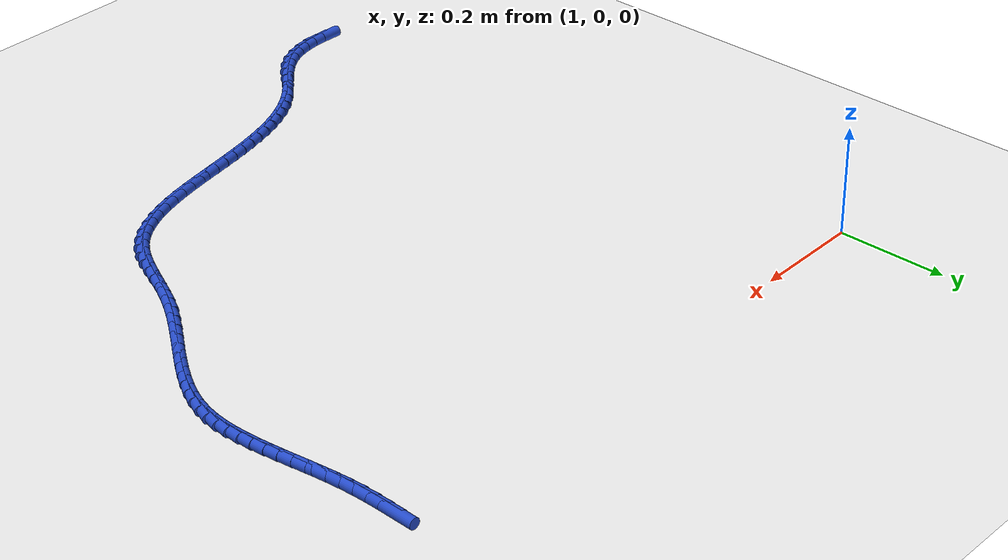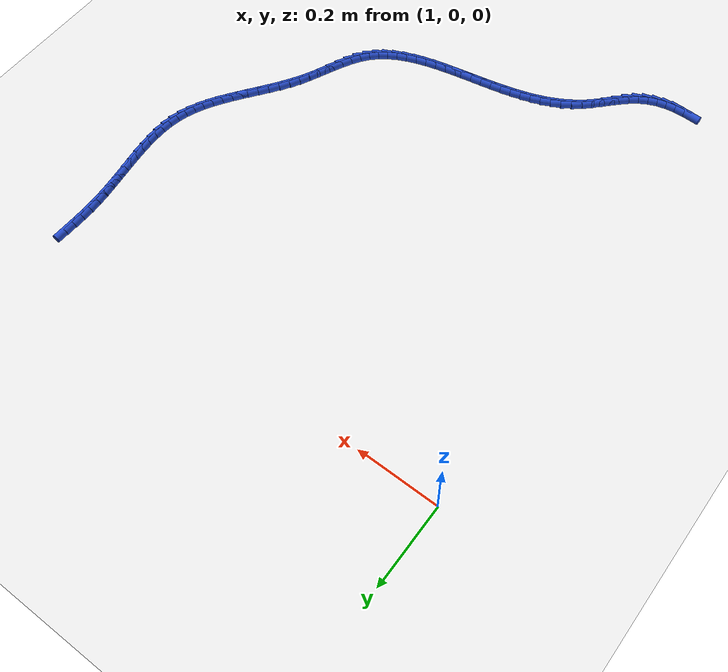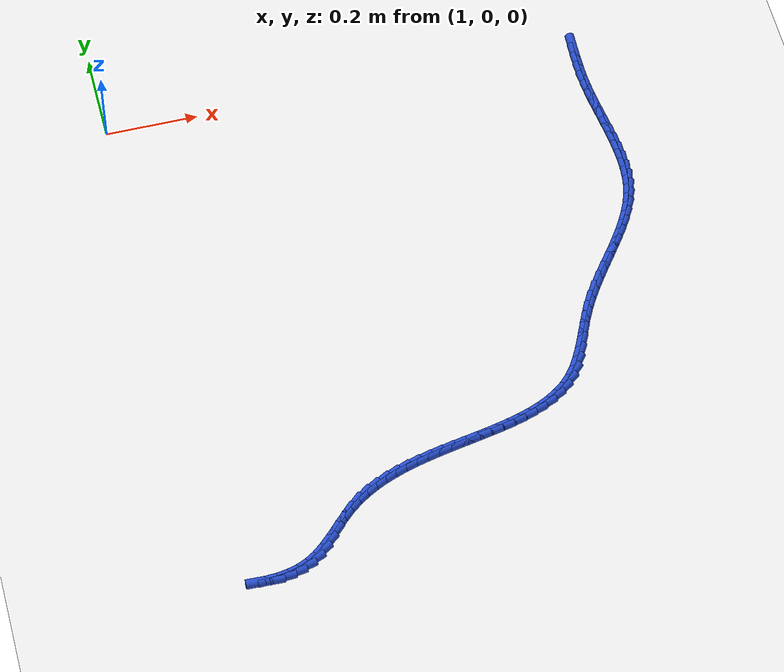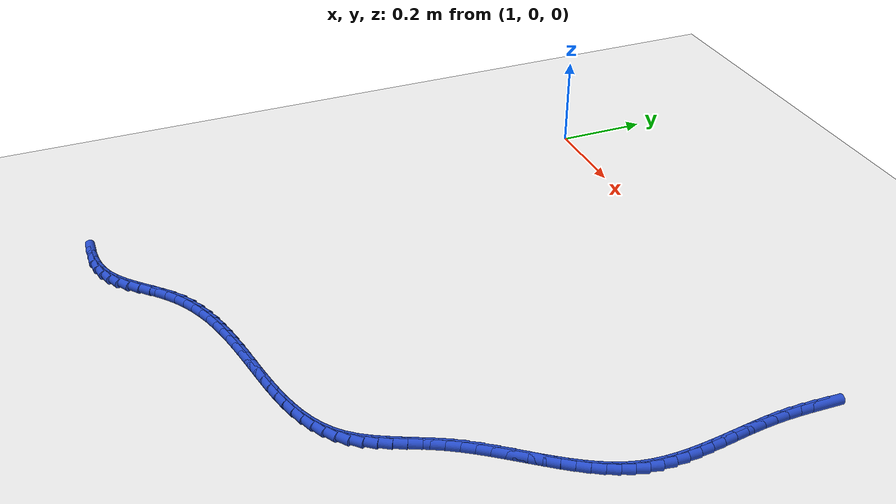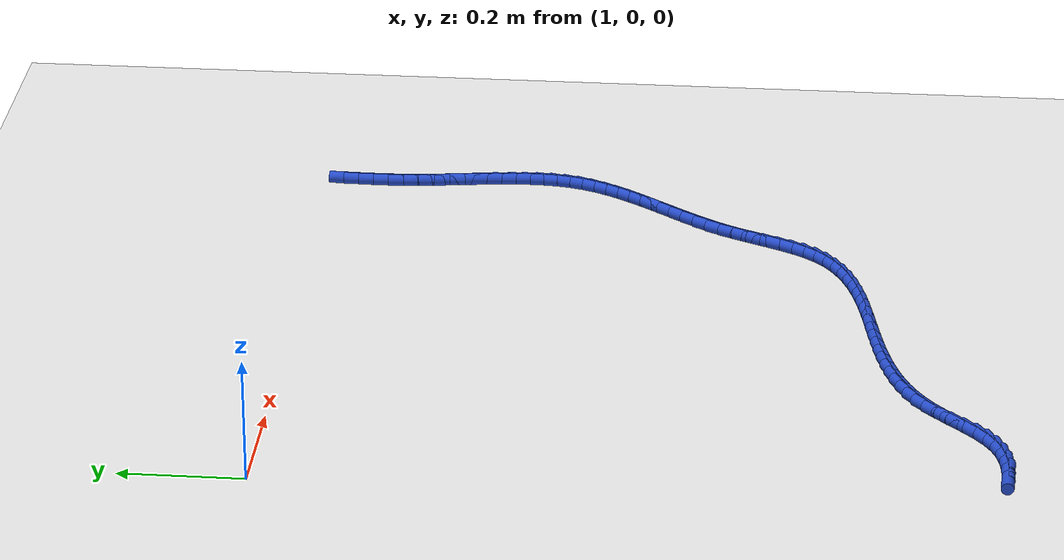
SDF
<sdf version="1.6">
 <world name="default">
  <model name="ground_plane">
   <static>1</static>
   <link name="link">
    <collision name="collision">
     <geometry><plane><normal>0 0 1</normal><size>100 100</size></plane></geometry>
     <surface><friction><ode><mu>100</mu><mu2>50</mu2></ode></friction></surface>
    </collision>
    <visual name="visual">
     <cast_shadows>0</cast_shadows>
     <geometry><plane><normal>0 0 1</normal><size>100 100</size></plane></geometry>
     <material>
      <script><uri>file://media/materials/scripts/gazebo.material</uri><name>Gazebo/WhiteGlow</name></script>
     </material>
    </visual>
   </link>
  </model>
  <model name="line">
   <link name="link_134">
    <pose>2.0437239159734637 -0.029253644134321584 0.01 0 1.57 1.5387486247233988</pose>
    <collision name="collision">
     <geometry><cylinder><radius>0.01</radius><length>0.08</length></cylinder></geometry>
    </collision>
    <visual name="visual">
     <material>
      <script><name>Gazebo/Blue</name><uri>file://media/materials/scripts/gazebo.material</uri></script>
     </material>
     <geometry><cylinder><radius>0.01</radius><length>0.08</length></cylinder></geometry>
    </visual>
   </link>
   <link name="link_135">
    <pose>2.0429131219679495 -0.05454458099971622 0.01 0 1.57 1.5609436208194378</pose>
    <collision name="collision">
     <geometry><cylinder><radius>0.01</radius><length>0.08</length></cylinder></geometry>
    </collision>
    <visual name="visual">
     <material>
      <script><name>Gazebo/Blue</name><uri>file://media/materials/scripts/gazebo.material</uri></script>
     </material>
     <geometry><cylinder><radius>0.01</radius><length>0.08</length></cylinder></geometry>
    </visual>
   </link>
   <link name="link_136">
    <pose>2.0426626185187637 -0.07996859586579133 0.01 0 1.57 -1.5517502731560657</pose>
    <collision name="collision">
     <geometry><cylinder><radius>0.01</radius><length>0.08</length></cylinder></geometry>
    </collision>
    <visual name="visual">
     <material>
      <script><name>Gazebo/Blue</name><uri>file://media/materials/scripts/gazebo.material</uri></script>
     </material>
     <geometry><cylinder><radius>0.01</radius><length>0.08</length></cylinder></geometry>
    </visual>
   </link>
   <link name="link_137">
    <pose>2.0431495154571997 -0.10552969487027573 0.01 0 1.57 -1.516379673448183</pose>
    <collision name="collision">
     <geometry><cylinder><radius>0.01</radius><length>0.08</length></cylinder></geometry>
    </collision>
    <visual name="visual">
     <material>
      <script><name>Gazebo/Blue</name><uri>file://media/materials/scripts/gazebo.material</uri></script>
     </material>
     <geometry><cylinder><radius>0.01</radius><length>0.08</length></cylinder></geometry>
    </visual>
   </link>
   <link name="link_138">
    <pose>2.0445495125193203 -0.13123165972452294 0.01 0 1.57 -1.480540140591088</pose>
    <collision name="collision">
     <geometry><cylinder><radius>0.01</radius><length>0.08</length></cylinder></geometry>
    </collision>
    <visual name="visual">
     <material>
      <script><name>Gazebo/Blue</name><uri>file://media/materials/scripts/gazebo.material</uri></script>
     </material>
     <geometry><cylinder><radius>0.01</radius><length>0.08</length></cylinder></geometry>
    </visual>
   </link>
   <link name="link_139">
    <pose>2.0468864977049606 -0.1570541102553452 0.01 0 1.57 -1.4548975716802495</pose>
    <collision name="collision">
     <geometry><cylinder><radius>0.01</radius><length>0.08</length></cylinder></geometry>
    </collision>
    <visual name="visual">
     <material>
      <script><name>Gazebo/Blue</name><uri>file://media/materials/scripts/gazebo.material</uri></script>
     </material>
     <geometry><cylinder><radius>0.01</radius><length>0.08</length></cylinder></geometry>
    </visual>
   </link>
   <link name="link_140">
    <pose>2.0498991294856013 -0.18293127004350787 0.01 0 1.57 -1.4402466322310568</pose>
    <collision name="collision">
     <geometry><cylinder><radius>0.01</radius><length>0.08</length></cylinder></geometry>
    </collision>
    <visual name="visual">
     <material>
      <script><name>Gazebo/Blue</name><uri>file://media/materials/scripts/gazebo.material</uri></script>
     </material>
     <geometry><cylinder><radius>0.01</radius><length>0.08</length></cylinder></geometry>
    </visual>
   </link>
   <link name="link_141">
    <pose>2.0532945979938524 -0.20879235426667545 0.01 0 1.57 -1.436379928662767</pose>
    <collision name="collision">
     <geometry><cylinder><radius>0.01</radius><length>0.08</length></cylinder></geometry>
    </collision>
    <visual name="visual">
     <material>
      <script><name>Gazebo/Blue</name><uri>file://media/materials/scripts/gazebo.material</uri></script>
     </material>
     <geometry><cylinder><radius>0.01</radius><length>0.08</length></cylinder></geometry>
    </visual>
   </link>
   <link name="link_142">
    <pose>2.056780093362319 -0.23456657810251 0.01 0 1.57 -1.443343010118701</pose>
    <collision name="collision">
     <geometry><cylinder><radius>0.01</radius><length>0.08</length></cylinder></geometry>
    </collision>
    <visual name="visual">
     <material>
      <script><name>Gazebo/Blue</name><uri>file://media/materials/scripts/gazebo.material</uri></script>
     </material>
     <geometry><cylinder><radius>0.01</radius><length>0.08</length></cylinder></geometry>
    </visual>
   </link>
   <link name="link_143">
    <pose>2.0600628057236094 -0.2601831567286768 0.01 0 1.57 -1.461453842899808</pose>
    <collision name="collision">
     <geometry><cylinder><radius>0.01</radius><length>0.08</length></cylinder></geometry>
    </collision>
    <visual name="visual">
     <material>
      <script><name>Gazebo/Blue</name><uri>file://media/materials/scripts/gazebo.material</uri></script>
     </material>
     <geometry><cylinder><radius>0.01</radius><length>0.08</length></cylinder></geometry>
    </visual>
   </link>
   <link name="link_144">
    <pose>2.062849925210332 -0.2855713053228381 0.01 0 1.57 -1.4912989487225434</pose>
    <collision name="collision">
     <geometry><cylinder><radius>0.01</radius><length>0.08</length></cylinder></geometry>
    </collision>
    <visual name="visual">
     <material>
      <script><name>Gazebo/Blue</name><uri>file://media/materials/scripts/gazebo.material</uri></script>
     </material>
     <geometry><cylinder><radius>0.01</radius><length>0.08</length></cylinder></geometry>
    </visual>
   </link>
   <link name="link_145">
    <pose>2.0648486419550927 -0.31066023906265877 0.01 0 1.57 -1.5336958947669288</pose>
    <collision name="collision">
     <geometry><cylinder><radius>0.01</radius><length>0.08</length></cylinder></geometry>
    </collision>
    <visual name="visual">
     <material>
      <script><name>Gazebo/Blue</name><uri>file://media/materials/scripts/gazebo.material</uri></script>
     </material>
     <geometry><cylinder><radius>0.01</radius><length>0.08</length></cylinder></geometry>
    </visual>
   </link>
   <link name="link_146">
    <pose>2.0657661460904997 -0.3353791731258014 0.01 0 1.57 1.5519948713301632</pose>
    <collision name="collision">
     <geometry><cylinder><radius>0.01</radius><length>0.08</length></cylinder></geometry>
    </collision>
    <visual name="visual">
     <material>
      <script><name>Gazebo/Blue</name><uri>file://media/materials/scripts/gazebo.material</uri></script>
     </material>
     <geometry><cylinder><radius>0.01</radius><length>0.08</length></cylinder></geometry>
    </visual>
   </link>
   <link name="link_147">
    <pose>2.0653096277491603 -0.3596573226899309 0.01 0 1.57 1.4816910343936818</pose>
    <collision name="collision">
     <geometry><cylinder><radius>0.01</radius><length>0.08</length></cylinder></geometry>
    </collision>
    <visual name="visual">
     <material>
      <script><name>Gazebo/Blue</name><uri>file://media/materials/scripts/gazebo.material</uri></script>
     </material>
     <geometry><cylinder><radius>0.01</radius><length>0.08</length></cylinder></geometry>
    </visual>
   </link>
   <link name="link_148">
    <pose>2.063186277063683 -0.38342390293270967 0.01 0 1.57 1.396473059218879</pose>
    <collision name="collision">
     <geometry><cylinder><radius>0.01</radius><length>0.08</length></cylinder></geometry>
    </collision>
    <visual name="visual">
     <material>
      <script><name>Gazebo/Blue</name><uri>file://media/materials/scripts/gazebo.material</uri></script>
     </material>
     <geometry><cylinder><radius>0.01</radius><length>0.08</length></cylinder></geometry>
    </visual>
   </link>
   <link name="link_149">
    <pose>2.0591032841666745 -0.40660812903180266 0.01 0 1.57 1.2980463820832298</pose>
    <collision name="collision">
     <geometry><cylinder><radius>0.01</radius><length>0.08</length></cylinder></geometry>
    </collision>
    <visual name="visual">
     <material>
      <script><name>Gazebo/Blue</name><uri>file://media/materials/scripts/gazebo.material</uri></script>
     </material>
     <geometry><cylinder><radius>0.01</radius><length>0.08</length></cylinder></geometry>
    </visual>
   </link>
   <link name="link_150">
    <pose>2.0527982177593525 -0.4291486853962547 0.01 0 1.57 1.203066451865588</pose>
    <collision name="collision">
     <geometry><cylinder><radius>0.01</radius><length>0.08</length></cylinder></geometry>
    </collision>
    <visual name="visual">
     <material>
      <script><name>Gazebo/Blue</name><uri>file://media/materials/scripts/gazebo.material</uri></script>
     </material>
     <geometry><cylinder><radius>0.01</radius><length>0.08</length></cylinder></geometry>
    </visual>
   </link>
   <link name="link_151">
    <pose>2.044345525981798 -0.45108926432391455 0.01 0 1.57 1.122513037046759</pose>
    <collision name="collision">
     <geometry><cylinder><radius>0.01</radius><length>0.08</length></cylinder></geometry>
    </collision>
    <visual name="visual">
     <material>
      <script><name>Gazebo/Blue</name><uri>file://media/materials/scripts/gazebo.material</uri></script>
     </material>
     <geometry><cylinder><radius>0.01</radius><length>0.08</length></cylinder></geometry>
    </visual>
   </link>
   <link name="link_152">
    <pose>2.03402951369882 -0.47253897205326506 0.01 0 1.57 1.056945059654597</pose>
    <collision name="collision">
     <geometry><cylinder><radius>0.01</radius><length>0.08</length></cylinder></geometry>
    </collision>
    <visual name="visual">
     <material>
      <script><name>Gazebo/Blue</name><uri>file://media/materials/scripts/gazebo.material</uri></script>
     </material>
     <geometry><cylinder><radius>0.01</radius><length>0.08</length></cylinder></geometry>
    </visual>
   </link>
   <link name="link_153">
    <pose>2.0221376619810205 -0.493607904870342 0.01 0 1.57 1.0059530532068335</pose>
    <collision name="collision">
     <geometry><cylinder><radius>0.01</radius><length>0.08</length></cylinder></geometry>
    </collision>
    <visual name="visual">
     <material>
      <script><name>Gazebo/Blue</name><uri>file://media/materials/scripts/gazebo.material</uri></script>
     </material>
     <geometry><cylinder><radius>0.01</radius><length>0.08</length></cylinder></geometry>
    </visual>
   </link>
   <link name="link_154">
    <pose>2.0089574518990023 -0.514406159061184 0.01 0 1.57 0.9687496092436748</pose>
    <collision name="collision">
     <geometry><cylinder><radius>0.01</radius><length>0.08</length></cylinder></geometry>
    </collision>
    <visual name="visual">
     <material>
      <script><name>Gazebo/Blue</name><uri>file://media/materials/scripts/gazebo.material</uri></script>
     </material>
     <geometry><cylinder><radius>0.01</radius><length>0.08</length></cylinder></geometry>
    </visual>
   </link>
   <link name="link_155">
    <pose>1.9947763645233685 -0.5350438309118266 0.01 0 1.57 0.9444830496245344</pose>
    <collision name="collision">
     <geometry><cylinder><radius>0.01</radius><length>0.08</length></cylinder></geometry>
    </collision>
    <visual name="visual">
     <material>
      <script><name>Gazebo/Blue</name><uri>file://media/materials/scripts/gazebo.material</uri></script>
     </material>
     <geometry><cylinder><radius>0.01</radius><length>0.08</length></cylinder></geometry>
    </visual>
   </link>
   <link name="link_156">
    <pose>1.9798818809247205 -0.5556310167083084 0.01 0 1.57 0.9324200380225193</pose>
    <collision name="collision">
     <geometry><cylinder><radius>0.01</radius><length>0.08</length></cylinder></geometry>
    </collision>
    <visual name="visual">
     <material>
      <script><name>Gazebo/Blue</name><uri>file://media/materials/scripts/gazebo.material</uri></script>
     </material>
     <geometry><cylinder><radius>0.01</radius><length>0.08</length></cylinder></geometry>
    </visual>
   </link>
   <link name="link_157">
    <pose>1.9645614821736614 -0.576277812736665 0.01 0 1.57 0.9320326433944948</pose>
    <collision name="collision">
     <geometry><cylinder><radius>0.01</radius><length>0.08</length></cylinder></geometry>
    </collision>
    <visual name="visual">
     <material>
      <script><name>Gazebo/Blue</name><uri>file://media/materials/scripts/gazebo.material</uri></script>
     </material>
     <geometry><cylinder><radius>0.01</radius><length>0.08</length></cylinder></geometry>
    </visual>
   </link>
   <link name="link_158">
    <pose>1.9491026493407928 -0.5970943152829351 0.01 0 1.57 0.9430233404289562</pose>
    <collision name="collision">
     <geometry><cylinder><radius>0.01</radius><length>0.08</length></cylinder></geometry>
    </collision>
    <visual name="visual">
     <material>
      <script><name>Gazebo/Blue</name><uri>file://media/materials/scripts/gazebo.material</uri></script>
     </material>
     <geometry><cylinder><radius>0.01</radius><length>0.08</length></cylinder></geometry>
    </visual>
   </link>
   <link name="link_159">
    <pose>1.9337928634967179 -0.6181906206331542 0.01 0 1.57 0.9653085119295896</pose>
    <collision name="collision">
     <geometry><cylinder><radius>0.01</radius><length>0.08</length></cylinder></geometry>
    </collision>
    <visual name="visual">
     <material>
      <script><name>Gazebo/Blue</name><uri>file://media/materials/scripts/gazebo.material</uri></script>
     </material>
     <geometry><cylinder><radius>0.01</radius><length>0.08</length></cylinder></geometry>
    </visual>
   </link>
   <link name="link_160">
    <pose>1.9189196057120381 -0.6396768250733601 0.01 0 1.57 0.9989677914977563</pose>
    <collision name="collision">
     <geometry><cylinder><radius>0.01</radius><length>0.08</length></cylinder></geometry>
    </collision>
    <visual name="visual">
     <material>
      <script><name>Gazebo/Blue</name><uri>file://media/materials/scripts/gazebo.material</uri></script>
     </material>
     <geometry><cylinder><radius>0.01</radius><length>0.08</length></cylinder></geometry>
    </visual>
   </link>
   <link name="link_161">
    <pose>1.9047703570573564 -0.6616630248895908 0.01 0 1.57 1.0441564972787405</pose>
    <collision name="collision">
     <geometry><cylinder><radius>0.01</radius><length>0.08</length></cylinder></geometry>
    </collision>
    <visual name="visual">
     <material>
      <script><name>Gazebo/Blue</name><uri>file://media/materials/scripts/gazebo.material</uri></script>
     </material>
     <geometry><cylinder><radius>0.01</radius><length>0.08</length></cylinder></geometry>
    </visual>
   </link>
   <link name="link_162">
    <pose>1.8916325986032752 -0.6842593163678817 0.01 0 1.57 1.0959298777971835</pose>
    <collision name="collision">
     <geometry><cylinder><radius>0.01</radius><length>0.08</length></cylinder></geometry>
    </collision>
    <visual name="visual">
     <material>
      <script><name>Gazebo/Blue</name><uri>file://media/materials/scripts/gazebo.material</uri></script>
     </material>
     <geometry><cylinder><radius>0.01</radius><length>0.08</length></cylinder></geometry>
    </visual>
   </link>
   <link name="link_163">
    <pose>1.879684255958843 -0.7075004504792011 0.01 0 1.57 1.1299395711670956</pose>
    <collision name="collision">
     <geometry><cylinder><radius>0.01</radius><length>0.08</length></cylinder></geometry>
    </collision>
    <visual name="visual">
     <material>
      <script><name>Gazebo/Blue</name><uri>file://media/materials/scripts/gazebo.material</uri></script>
     </material>
     <geometry><cylinder><radius>0.01</radius><length>0.08</length></cylinder></geometry>
    </visual>
   </link>
   <link name="link_164">
    <pose>1.8685706297657454 -0.7310548724402285 0.01 0 1.57 1.1389622435709437</pose>
    <collision name="collision">
     <geometry><cylinder><radius>0.01</radius><length>0.08</length></cylinder></geometry>
    </collision>
    <visual name="visual">
     <material>
      <script><name>Gazebo/Blue</name><uri>file://media/materials/scripts/gazebo.material</uri></script>
     </material>
     <geometry><cylinder><radius>0.01</radius><length>0.08</length></cylinder></geometry>
    </visual>
   </link>
   <link name="link_165">
    <pose>1.8577753903151097 -0.7544798683386076 0.01 0 1.57 1.1224281262461495</pose>
    <collision name="collision">
     <geometry><cylinder><radius>0.01</radius><length>0.08</length></cylinder></geometry>
    </collision>
    <visual name="visual">
     <material>
      <script><name>Gazebo/Blue</name><uri>file://media/materials/scripts/gazebo.material</uri></script>
     </material>
     <geometry><cylinder><radius>0.01</radius><length>0.08</length></cylinder></geometry>
    </visual>
   </link>
   <link name="link_166">
    <pose>1.8467821713204258 -0.7773326991061943 0.01 0 1.57 1.0786785189212944</pose>
    <collision name="collision">
     <geometry><cylinder><radius>0.01</radius><length>0.08</length></cylinder></geometry>
    </collision>
    <visual name="visual">
     <material>
      <script><name>Gazebo/Blue</name><uri>file://media/materials/scripts/gazebo.material</uri></script>
     </material>
     <geometry><cylinder><radius>0.01</radius><length>0.08</length></cylinder></geometry>
    </visual>
   </link>
   <link name="link_167">
    <pose>1.835074606495183 -0.7991706256748469 0.01 0 1.57 1.005150303773638</pose>
    <collision name="collision">
     <geometry><cylinder><radius>0.01</radius><length>0.08</length></cylinder></geometry>
    </collision>
    <visual name="visual">
     <material>
      <script><name>Gazebo/Blue</name><uri>file://media/materials/scripts/gazebo.material</uri></script>
     </material>
     <geometry><cylinder><radius>0.01</radius><length>0.08</length></cylinder></geometry>
    </visual>
   </link>
   <link name="link_168">
    <pose>1.8221363295528719 -0.8195509089764217 0.01 0 1.57 0.8993160857044395</pose>
    <collision name="collision">
     <geometry><cylinder><radius>0.01</radius><length>0.08</length></cylinder></geometry>
    </collision>
    <visual name="visual">
     <material>
      <script><name>Gazebo/Blue</name><uri>file://media/materials/scripts/gazebo.material</uri></script>
     </material>
     <geometry><cylinder><radius>0.01</radius><length>0.08</length></cylinder></geometry>
    </visual>
   </link>
   <link name="link_169">
    <pose>1.8074509742069824 -0.8380308099427776 0.01 0 1.57 0.7668327677381886</pose>
    <collision name="collision">
     <geometry><cylinder><radius>0.01</radius><length>0.08</length></cylinder></geometry>
    </collision>
    <visual name="visual">
     <material>
      <script><name>Gazebo/Blue</name><uri>file://media/materials/scripts/gazebo.material</uri></script>
     </material>
     <geometry><cylinder><radius>0.01</radius><length>0.08</length></cylinder></geometry>
    </visual>
   </link>
   <link name="link_170">
    <pose>1.7906076328627598 -0.8542600747152802 0.01 0 1.57 0.639861048322176</pose>
    <collision name="collision">
     <geometry><cylinder><radius>0.01</radius><length>0.08</length></cylinder></geometry>
    </collision>
    <visual name="visual">
     <material>
      <script><name>Gazebo/Blue</name><uri>file://media/materials/scripts/gazebo.material</uri></script>
     </material>
     <geometry><cylinder><radius>0.01</radius><length>0.08</length></cylinder></geometry>
    </visual>
   </link>
   <link name="link_171">
    <pose>1.7717015895469264 -0.8683323695843636 0.01 0 1.57 0.5300281745696098</pose>
    <collision name="collision">
     <geometry><cylinder><radius>0.01</radius><length>0.08</length></cylinder></geometry>
    </collision>
    <visual name="visual">
     <material>
      <script><name>Gazebo/Blue</name><uri>file://media/materials/scripts/gazebo.material</uri></script>
     </material>
     <geometry><cylinder><radius>0.01</radius><length>0.08</length></cylinder></geometry>
    </visual>
   </link>
   <link name="link_172">
    <pose>1.7509798197636126 -0.880474391298506 0.01 0 1.57 0.43796140188075117</pose>
    <collision name="collision">
     <geometry><cylinder><radius>0.01</radius><length>0.08</length></cylinder></geometry>
    </collision>
    <visual name="visual">
     <material>
      <script><name>Gazebo/Blue</name><uri>file://media/materials/scripts/gazebo.material</uri></script>
     </material>
     <geometry><cylinder><radius>0.01</radius><length>0.08</length></cylinder></geometry>
    </visual>
   </link>
   <link name="link_173">
    <pose>1.7286893273848045 -0.8909128614842371 0.01 0 1.57 0.3627398708807764</pose>
    <collision name="collision">
     <geometry><cylinder><radius>0.01</radius><length>0.08</length></cylinder></geometry>
    </collision>
    <visual name="visual">
     <material>
      <script><name>Gazebo/Blue</name><uri>file://media/materials/scripts/gazebo.material</uri></script>
     </material>
     <geometry><cylinder><radius>0.01</radius><length>0.08</length></cylinder></geometry>
    </visual>
   </link>
   <link name="link_174">
    <pose>1.7050771162824852 -0.8998745017680876 0.01 0 1.57 0.30276926969136303</pose>
    <collision name="collision">
     <geometry><cylinder><radius>0.01</radius><length>0.08</length></cylinder></geometry>
    </collision>
    <visual name="visual">
     <material>
      <script><name>Gazebo/Blue</name><uri>file://media/materials/scripts/gazebo.material</uri></script>
     </material>
     <geometry><cylinder><radius>0.01</radius><length>0.08</length></cylinder></geometry>
    </visual>
   </link>
   <link name="link_175">
    <pose>1.6803901903286391 -0.9075860337765864 0.01 0 1.57 0.2563619153375675</pose>
    <collision name="collision">
     <geometry><cylinder><radius>0.01</radius><length>0.08</length></cylinder></geometry>
    </collision>
    <visual name="visual">
     <material>
      <script><name>Gazebo/Blue</name><uri>file://media/materials/scripts/gazebo.material</uri></script>
     </material>
     <geometry><cylinder><radius>0.01</radius><length>0.08</length></cylinder></geometry>
    </visual>
   </link>
   <link name="link_176">
    <pose>1.6548755533952502 -0.9142741791362647 0.01 0 1.57 0.22204483065766578</pose>
    <collision name="collision">
     <geometry><cylinder><radius>0.01</radius><length>0.08</length></cylinder></geometry>
    </collision>
    <visual name="visual">
     <material>
      <script><name>Gazebo/Blue</name><uri>file://media/materials/scripts/gazebo.material</uri></script>
     </material>
     <geometry><cylinder><radius>0.01</radius><length>0.08</length></cylinder></geometry>
    </visual>
   </link>
   <link name="link_177">
    <pose>1.628780209354303 -0.9201656594736514 0.01 0 1.57 0.1986950544603579</pose>
    <collision name="collision">
     <geometry><cylinder><radius>0.01</radius><length>0.08</length></cylinder></geometry>
    </collision>
    <visual name="visual">
     <material>
      <script><name>Gazebo/Blue</name><uri>file://media/materials/scripts/gazebo.material</uri></script>
     </material>
     <geometry><cylinder><radius>0.01</radius><length>0.08</length></cylinder></geometry>
    </visual>
   </link>
   <link name="link_178">
    <pose>1.6023511620777813 -0.9254871964152774 0.01 0 1.57 0.1855888561746313</pose>
    <collision name="collision">
     <geometry><cylinder><radius>0.01</radius><length>0.08</length></cylinder></geometry>
    </collision>
    <visual name="visual">
     <material>
      <script><name>Gazebo/Blue</name><uri>file://media/materials/scripts/gazebo.material</uri></script>
     </material>
     <geometry><cylinder><radius>0.01</radius><length>0.08</length></cylinder></geometry>
    </visual>
   </link>
   <link name="link_179">
    <pose>1.5758354154376701 -0.930465511587672 0.01 0 1.57 0.18229581846265133</pose>
    <collision name="collision">
     <geometry><cylinder><radius>0.01</radius><length>0.08</length></cylinder></geometry>
    </collision>
    <visual name="visual">
     <material>
      <script><name>Gazebo/Blue</name><uri>file://media/materials/scripts/gazebo.material</uri></script>
     </material>
     <geometry><cylinder><radius>0.01</radius><length>0.08</length></cylinder></geometry>
    </visual>
   </link>
   <link name="link_180">
    <pose>1.549472644163638 -0.9353252871711306 0.01 0 1.57 0.18718809251731744</pose>
    <collision name="collision">
     <geometry><cylinder><radius>0.01</radius><length>0.08</length></cylinder></geometry>
    </collision>
    <visual name="visual">
     <material>
      <script><name>Gazebo/Blue</name><uri>file://media/materials/scripts/gazebo.material</uri></script>
     </material>
     <geometry><cylinder><radius>0.01</radius><length>0.08</length></cylinder></geometry>
    </visual>
   </link>
   <link name="link_181">
    <pose>1.523401951120347 -0.9402632196823281 0.01 0 1.57 0.19926320897147268</pose>
    <collision name="collision">
     <geometry><cylinder><radius>0.01</radius><length>0.08</length></cylinder></geometry>
    </collision>
    <visual name="visual">
     <material>
      <script><name>Gazebo/Blue</name><uri>file://media/materials/scripts/gazebo.material</uri></script>
     </material>
     <geometry><cylinder><radius>0.01</radius><length>0.08</length></cylinder></geometry>
    </visual>
   </link>
   <link name="link_182">
    <pose>1.4976894211634943 -0.945455687257278 0.01 0 1.57 0.21877977740927115</pose>
    <collision name="collision">
     <geometry><cylinder><radius>0.01</radius><length>0.08</length></cylinder></geometry>
    </collision>
    <visual name="visual">
     <material>
      <script><name>Gazebo/Blue</name><uri>file://media/materials/scripts/gazebo.material</uri></script>
     </material>
     <geometry><cylinder><radius>0.01</radius><length>0.08</length></cylinder></geometry>
    </visual>
   </link>
   <link name="link_183">
    <pose>1.4723994984687105 -0.9510786114876083 0.01 0 1.57 0.24606305001501694</pose>
    <collision name="collision">
     <geometry><cylinder><radius>0.01</radius><length>0.08</length></cylinder></geometry>
    </collision>
    <visual name="visual">
     <material>
      <script><name>Gazebo/Blue</name><uri>file://media/materials/scripts/gazebo.material</uri></script>
     </material>
     <geometry><cylinder><radius>0.01</radius><length>0.08</length></cylinder></geometry>
    </visual>
   </link>
   <link name="link_184">
    <pose>1.4475966272116279 -0.9573079139649451 0.01 0 1.57 0.28144719460990913</pose>
    <collision name="collision">
     <geometry><cylinder><radius>0.01</radius><length>0.08</length></cylinder></geometry>
    </collision>
    <visual name="visual">
     <material>
      <script><name>Gazebo/Blue</name><uri>file://media/materials/scripts/gazebo.material</uri></script>
     </material>
     <geometry><cylinder><radius>0.01</radius><length>0.08</length></cylinder></geometry>
    </visual>
   </link>
   <link name="link_185">
    <pose>1.4233452515678744 -0.964319516280915 0.01 0 1.57 0.32522479022413</pose>
    <collision name="collision">
     <geometry><cylinder><radius>0.01</radius><length>0.08</length></cylinder></geometry>
    </collision>
    <visual name="visual">
     <material>
      <script><name>Gazebo/Blue</name><uri>file://media/materials/scripts/gazebo.material</uri></script>
     </material>
     <geometry><cylinder><radius>0.01</radius><length>0.08</length></cylinder></geometry>
    </visual>
   </link>
   <link name="link_186">
    <pose>1.399709815713083 -0.9722893400271448 0.01 0 1.57 0.37757165423020417</pose>
    <collision name="collision">
     <geometry><cylinder><radius>0.01</radius><length>0.08</length></cylinder></geometry>
    </collision>
    <visual name="visual">
     <material>
      <script><name>Gazebo/Blue</name><uri>file://media/materials/scripts/gazebo.material</uri></script>
     </material>
     <geometry><cylinder><radius>0.01</radius><length>0.08</length></cylinder></geometry>
    </visual>
   </link>
   <link name="link_187">
    <pose>1.3767547638228823 -0.9813933067952619 0.01 0 1.57 0.4384468883968679</pose>
    <collision name="collision">
     <geometry><cylinder><radius>0.01</radius><length>0.08</length></cylinder></geometry>
    </collision>
    <visual name="visual">
     <material>
      <script><name>Gazebo/Blue</name><uri>file://media/materials/scripts/gazebo.material</uri></script>
     </material>
     <geometry><cylinder><radius>0.01</radius><length>0.08</length></cylinder></geometry>
    </visual>
   </link>
   <link name="link_188">
    <pose>1.3545445400729044 -0.9918073381768926 0.01 0 1.57 0.5074769170546531</pose>
    <collision name="collision">
     <geometry><cylinder><radius>0.01</radius><length>0.08</length></cylinder></geometry>
    </collision>
    <visual name="visual">
     <material>
      <script><name>Gazebo/Blue</name><uri>file://media/materials/scripts/gazebo.material</uri></script>
     </material>
     <geometry><cylinder><radius>0.01</radius><length>0.08</length></cylinder></geometry>
    </visual>
   </link>
   <link name="link_189">
    <pose>1.3331435886387781 -1.003707355763664 0.01 0 1.57 0.5838462504409223</pose>
    <collision name="collision">
     <geometry><cylinder><radius>0.01</radius><length>0.08</length></cylinder></geometry>
    </collision>
    <visual name="visual">
     <material>
      <script><name>Gazebo/Blue</name><uri>file://media/materials/scripts/gazebo.material</uri></script>
     </material>
     <geometry><cylinder><radius>0.01</radius><length>0.08</length></cylinder></geometry>
    </visual>
   </link>
   <link name="link_190">
    <pose>1.3126163536961353 -1.0172692811472022 0.01 0 1.57 0.6662323681479464</pose>
    <collision name="collision">
     <geometry><cylinder><radius>0.01</radius><length>0.08</length></cylinder></geometry>
    </collision>
    <visual name="visual">
     <material>
      <script><name>Gazebo/Blue</name><uri>file://media/materials/scripts/gazebo.material</uri></script>
     </material>
     <geometry><cylinder><radius>0.01</radius><length>0.08</length></cylinder></geometry>
    </visual>
   </link>
   <link name="link_191">
    <pose>1.2930272791251929 -1.0326690352014138 0.01 0 1.57 0.7445756795169972</pose>
    <collision name="collision">
     <geometry><cylinder><radius>0.01</radius><length>0.08</length></cylinder></geometry>
    </collision>
    <visual name="visual">
     <material>
      <script><name>Gazebo/Blue</name><uri>file://media/materials/scripts/gazebo.material</uri></script>
     </material>
     <geometry><cylinder><radius>0.01</radius><length>0.08</length></cylinder></geometry>
    </visual>
   </link>
   <link name="link_192">
    <pose>1.2743555268975029 -1.049875341816943 0.01 0 1.57 0.7878528002372988</pose>
    <collision name="collision">
     <geometry><cylinder><radius>0.01</radius><length>0.08</length></cylinder></geometry>
    </collision>
    <visual name="visual">
     <material>
      <script><name>Gazebo/Blue</name><uri>file://media/materials/scripts/gazebo.material</uri></script>
     </material>
     <geometry><cylinder><radius>0.01</radius><length>0.08</length></cylinder></geometry>
    </visual>
   </link>
   <link name="link_193">
    <pose>1.2562544925864731 -1.0680654579016078 0.01 0 1.57 0.7911443232818505</pose>
    <collision name="collision">
     <geometry><cylinder><radius>0.01</radius><length>0.08</length></cylinder></geometry>
    </collision>
    <visual name="visual">
     <material>
      <script><name>Gazebo/Blue</name><uri>file://media/materials/scripts/gazebo.material</uri></script>
     </material>
     <geometry><cylinder><radius>0.01</radius><length>0.08</length></cylinder></geometry>
    </visual>
   </link>
   <link name="link_194">
    <pose>1.2382997990405922 -1.0862276873456913 0.01 0 1.57 0.7540106128436078</pose>
    <collision name="collision">
     <geometry><cylinder><radius>0.01</radius><length>0.08</length></cylinder></geometry>
    </collision>
    <visual name="visual">
     <material>
      <script><name>Gazebo/Blue</name><uri>file://media/materials/scripts/gazebo.material</uri></script>
     </material>
     <geometry><cylinder><radius>0.01</radius><length>0.08</length></cylinder></geometry>
    </visual>
   </link>
   <link name="link_195">
    <pose>1.220067069108347 -1.103350334039475 0.01 0 1.57 0.6722646194066946</pose>
    <collision name="collision">
     <geometry><cylinder><radius>0.01</radius><length>0.08</length></cylinder></geometry>
    </collision>
    <visual name="visual">
     <material>
      <script><name>Gazebo/Blue</name><uri>file://media/materials/scripts/gazebo.material</uri></script>
     </material>
     <geometry><cylinder><radius>0.01</radius><length>0.08</length></cylinder></geometry>
    </visual>
   </link>
   <link name="link_196">
    <pose>1.2011319256382256 -1.118421701873243 0.01 0 1.57 0.5418783074956459</pose>
    <collision name="collision">
     <geometry><cylinder><radius>0.01</radius><length>0.08</length></cylinder></geometry>
    </collision>
    <visual name="visual">
     <material>
      <script><name>Gazebo/Blue</name><uri>file://media/materials/scripts/gazebo.material</uri></script>
     </material>
     <geometry><cylinder><radius>0.01</radius><length>0.08</length></cylinder></geometry>
    </visual>
   </link>
   <link name="link_197">
    <pose>1.1810923002883862 -1.1304852701139283 0.01 0 1.57 0.39414233586484937</pose>
    <collision name="collision">
     <geometry><cylinder><radius>0.01</radius><length>0.08</length></cylinder></geometry>
    </collision>
    <visual name="visual">
     <material>
      <script><name>Gazebo/Blue</name><uri>file://media/materials/scripts/gazebo.material</uri></script>
     </material>
     <geometry><cylinder><radius>0.01</radius><length>0.08</length></cylinder></geometry>
    </visual>
   </link>
   <link name="link_198">
    <pose>1.1598444549680431 -1.1393223648348136 0.01 0 1.57 0.2588869426393984</pose>
    <collision name="collision">
     <geometry><cylinder><radius>0.01</radius><length>0.08</length></cylinder></geometry>
    </collision>
    <visual name="visual">
     <material>
      <script><name>Gazebo/Blue</name><uri>file://media/materials/scripts/gazebo.material</uri></script>
     </material>
     <geometry><cylinder><radius>0.01</radius><length>0.08</length></cylinder></geometry>
    </visual>
   </link>
   <link name="link_199">
    <pose>1.1374974159706688 -1.1452405327015307 0.01 0 1.57 0.14126209523999073</pose>
    <collision name="collision">
     <geometry><cylinder><radius>0.01</radius><length>0.08</length></cylinder></geometry>
    </collision>
    <visual name="visual">
     <material>
      <script><name>Gazebo/Blue</name><uri>file://media/materials/scripts/gazebo.material</uri></script>
     </material>
     <geometry><cylinder><radius>0.01</radius><length>0.08</length></cylinder></geometry>
    </visual>
   </link>
   <link name="link_200">
    <pose>1.114164789934151 -1.1485586487397734 0.01 0 1.57 0.042814394268331474</pose>
    <collision name="collision">
     <geometry><cylinder><radius>0.01</radius><length>0.08</length></cylinder></geometry>
    </collision>
    <visual name="visual">
     <material>
      <script><name>Gazebo/Blue</name><uri>file://media/materials/scripts/gazebo.material</uri></script>
     </material>
     <geometry><cylinder><radius>0.01</radius><length>0.08</length></cylinder></geometry>
    </visual>
   </link>
   <link name="link_201">
    <pose>1.089960183496381 -1.1495955879752344 0.01 0 1.57 -0.03705242819912283</pose>
    <collision name="collision">
     <geometry><cylinder><radius>0.01</radius><length>0.08</length></cylinder></geometry>
    </collision>
    <visual name="visual">
     <material>
      <script><name>Gazebo/Blue</name><uri>file://media/materials/scripts/gazebo.material</uri></script>
     </material>
     <geometry><cylinder><radius>0.01</radius><length>0.08</length></cylinder></geometry>
    </visual>
   </link>
  </model>
 </world>
</sdf>
